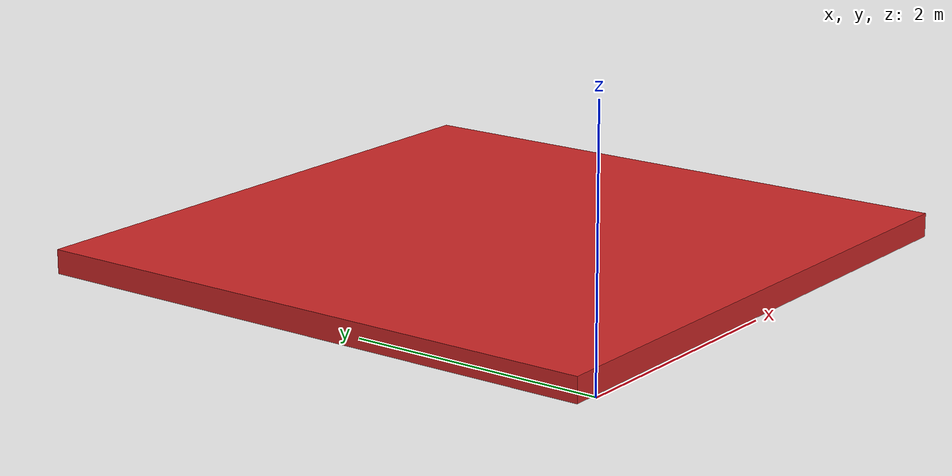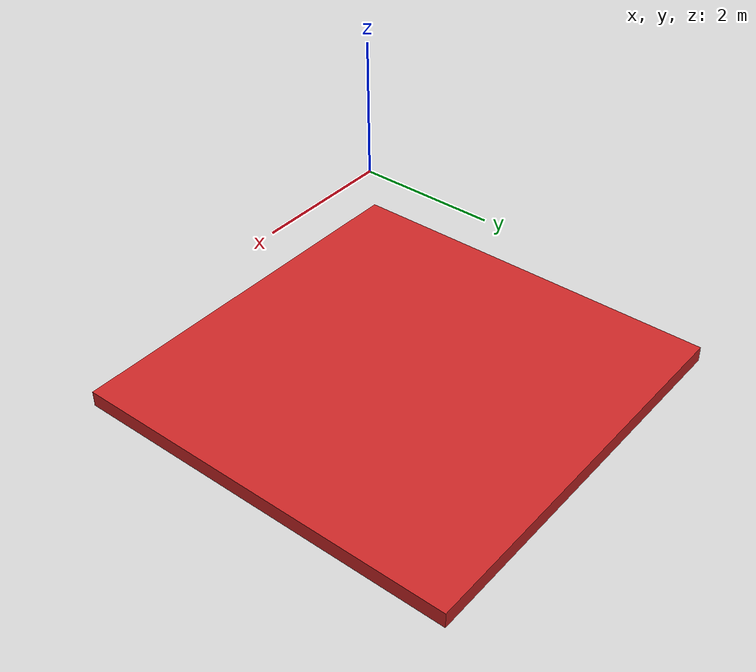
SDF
<?xml version="1.0"?>
<sdf version="1.6">
  <!-- Reference: https://www.polyformus.com/buoys/a-series -->
  <model name="platform">
    <static>false</static>
    <pose>3 3 -0.2 0 0 0</pose>
    <link name="base_link">
      <inertial>
        <!-- Reference: https://www.sailrite.com/PDF/Polyform-Buoys-Fenders-Accessories.pdf, page 8 -->
        <mass>50</mass>
      </inertial>
      <visual name="visual">
        <geometry>
          <box>
          	<size>5 5 0.2</size>
          </box>
        </geometry>
        <material>
          <script>
            <uri>file://media/materials/scripts/gazebo.material</uri>
            <name>Gazebo/Red</name>
          </script>
        </material>
      </visual>
      <collision name="collision">
        <geometry>
          <box>
          	<size>5 5 0.2</size>
          </box>
        </geometry>
      </collision>
    </link>

    <plugin name="BuoyancyPlugin" filename="libbuoyancy_gazebo_plugin.so">
      <wave_model>ocean_waves</wave_model>
      <fluid_density>1000</fluid_density>
      <fluid_level>0.0</fluid_level>
      <linear_drag>20.0</linear_drag>
      <angular_drag>2.0</angular_drag>
      <buoyancy name="buoyancy">
        <link_name>base_link</link_name>
        <geometry>
          <box>
          	<size>5 5 0.2</size>
          </box>
        </geometry>
      </buoyancy>
    </plugin>

  </model>
</sdf>
